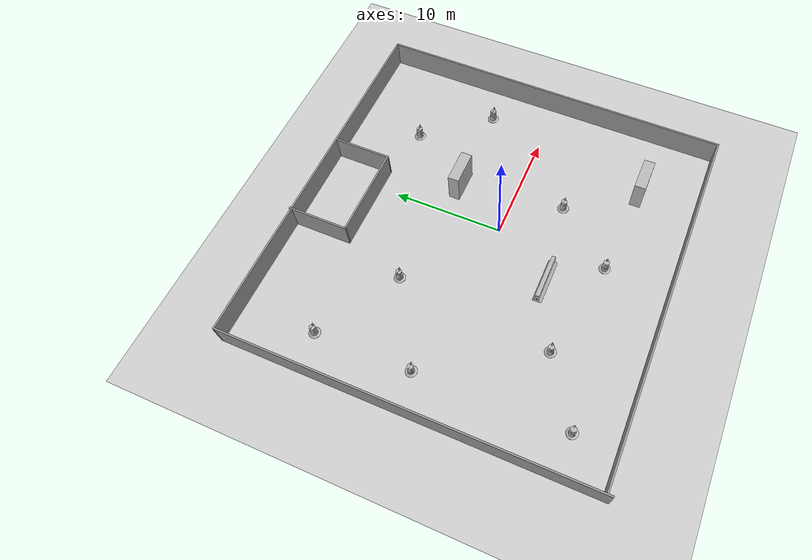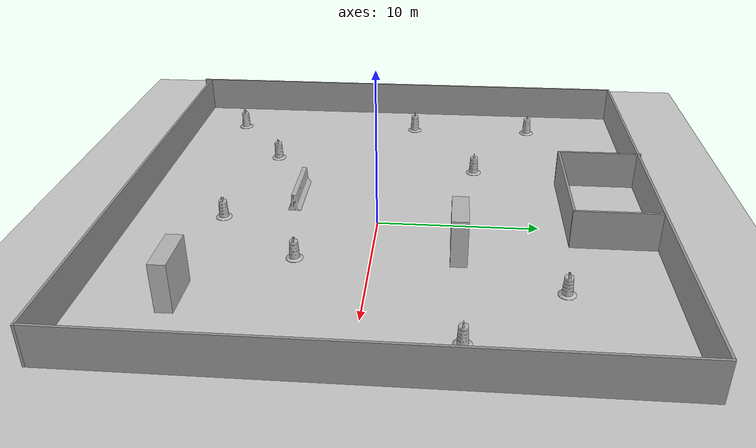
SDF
<sdf version="1.7">
 <world name="default">
  <light name="sun" type="directional">
   <pose>0 0 10 0 -0 0</pose>
   <diffuse>0.8 0.8 0.8 1</diffuse>
   <specular>0.2 0.2 0.2 1</specular>
   <attenuation>
    <range>1000</range>
    <constant>0.9</constant>
    <linear>0.01</linear>
    <quadratic>0.001</quadratic>
   </attenuation>
   <direction>-0.5 0.1 -0.9</direction>
   <spot><inner_angle>0</inner_angle><outer_angle>0</outer_angle><falloff>0</falloff></spot>
  </light>
  <model name="ground_plane">
   <static>1</static>
   <link name="link">
    <collision name="collision">
     <geometry><plane><normal>0 0 1</normal><size>100 100</size></plane></geometry>
     <surface>
      <contact><collide_bitmask>65535</collide_bitmask></contact>
      <friction><ode><mu>100</mu><mu2>50</mu2></ode></friction>
     </surface>
    </collision>
    <visual name="visual">
     <cast_shadows>0</cast_shadows>
     <geometry><plane><normal>0 0 1</normal><size>100 100</size></plane></geometry>
     <material>
      <script><uri>file://media/materials/scripts/gazebo.material</uri><name>Gazebo/Grey</name></script>
     </material>
    </visual>
   </link>
  </model>
  <gravity>0 0 -9.8</gravity>
  <magnetic_field>6e-06 2.3e-05 -4.2e-05</magnetic_field>
  <atmosphere type="adiabatic"/>
  <physics type="ode">
   <max_step_size>0.001</max_step_size>
   <real_time_factor>1</real_time_factor>
   <real_time_update_rate>1000</real_time_update_rate>
  </physics>
  <scene><ambient>0.4 0.4 0.4 1</ambient><background>0.7 0.7 0.7 1</background><shadows>1</shadows></scene>
  <spherical_coordinates>
   <surface_model>EARTH_WGS84</surface_model>
   <latitude_deg>0</latitude_deg>
   <longitude_deg>0</longitude_deg>
   <elevation>0</elevation>
   <heading_deg>0</heading_deg>
  </spherical_coordinates>
  <model name="easy">
   <pose>-1.71238 0.568959 0 0 -0 0</pose>
   <link name="Wall_0">
    <collision name="Wall_0_Collision">
     <geometry><box><size>33 0.15 2.5</size></box></geometry>
     <pose>0 0 1.25 0 -0 0</pose>
    </collision>
    <visual name="Wall_0_Visual">
     <pose>0 0 1.25 0 -0 0</pose>
     <geometry><box><size>33 0.15 2.5</size></box></geometry>
     <material>
      <script><uri>file://media/materials/scripts/gazebo.material</uri><name>Gazebo/Grey</name></script>
      <ambient>1 1 1 1</ambient>
     </material>
     <meta><layer>0</layer></meta>
    </visual>
    <pose>-16.4649 -0.061521 0 0 -0 -1.5708</pose>
   </link>
   <link name="Wall_2">
    <collision name="Wall_2_Collision">
     <geometry><box><size>32.5 0.15 2.5</size></box></geometry>
     <pose>0 0 1.25 0 -0 0</pose>
    </collision>
    <visual name="Wall_2_Visual">
     <pose>0 0 1.25 0 -0 0</pose>
     <geometry><box><size>32.5 0.15 2.5</size></box></geometry>
     <material>
      <script><uri>file://media/materials/scripts/gazebo.material</uri><name>Gazebo/Grey</name></script>
      <ambient>1 1 1 1</ambient>
     </material>
     <meta><layer>0</layer></meta>
    </visual>
    <pose>16.4649 0.167763 0 0 -0 -1.5708</pose>
   </link>
   <link name="Wall_3">
    <collision name="Wall_3_Collision">
     <geometry><box><size>32.9293 0.15 2.5</size></box></geometry>
     <pose>0 0 1.25 0 -0 0</pose>
    </collision>
    <visual name="Wall_3_Visual">
     <pose>0 0 1.25 0 -0 0</pose>
     <geometry><box><size>32.9293 0.15 2.5</size></box></geometry>
     <material>
      <script><uri>file://media/materials/scripts/gazebo.material</uri><name>Gazebo/Grey</name></script>
      <ambient>1 1 1 1</ambient>
     </material>
     <meta><layer>0</layer></meta>
    </visual>
    <pose>0.075243 -16.078 0 0 -0 3.14159</pose>
   </link>
   <link name="Wall_5">
    <collision name="Wall_5_Collision">
     <geometry><box><size>33 0.15 2.5</size></box></geometry>
     <pose>0 0 1.25 0 -0 0</pose>
    </collision>
    <visual name="Wall_5_Visual">
     <pose>0 0 1.25 0 -0 0</pose>
     <geometry><box><size>33 0.15 2.5</size></box></geometry>
     <material>
      <script><uri>file://media/materials/scripts/gazebo.material</uri><name>Gazebo/Grey</name></script>
      <ambient>1 1 1 1</ambient>
     </material>
     <meta><layer>0</layer></meta>
    </visual>
    <pose>-0.0399 16.3635 0 0 -0 0</pose>
   </link>
   <link name="Wall_7">
    <collision name="Wall_7_Collision">
     <geometry><box><size>5.5 0.15 2.5</size></box></geometry>
     <pose>0 0 1.25 0 -0 0</pose>
    </collision>
    <visual name="Wall_7_Visual">
     <pose>0 0 1.25 0 -0 0</pose>
     <geometry><box><size>5.5 0.15 2.5</size></box></geometry>
     <material>
      <script><uri>file://media/materials/scripts/gazebo.material</uri><name>Gazebo/Grey</name></script>
      <ambient>1 1 1 1</ambient>
     </material>
     <meta><layer>0</layer></meta>
    </visual>
    <pose>-4.41568 13.8115 0 0 -0 -1.5708</pose>
   </link>
   <link name="Wall_8">
    <collision name="Wall_8_Collision">
     <geometry><box><size>8.25 0.15 2.5</size></box></geometry>
     <pose>0 0 1.25 0 -0 0</pose>
    </collision>
    <visual name="Wall_8_Visual">
     <pose>0 0 1.25 0 -0 0</pose>
     <geometry><box><size>8.25 0.15 2.5</size></box></geometry>
     <material>
      <script><uri>file://media/materials/scripts/gazebo.material</uri><name>Gazebo/Grey</name></script>
      <ambient>1 1 1 1</ambient>
     </material>
     <meta><layer>0</layer></meta>
    </visual>
    <pose>-0.365684 11.1365 0 0 -0 0</pose>
   </link>
   <link name="Wall_9">
    <collision name="Wall_9_Collision">
     <geometry><box><size>5.25 0.15 2.5</size></box></geometry>
     <pose>0 0 1.25 0 -0 0</pose>
    </collision>
    <visual name="Wall_9_Visual">
     <pose>0 0 1.25 0 -0 0</pose>
     <geometry><box><size>5.25 0.15 2.5</size></box></geometry>
     <material>
      <script><uri>file://media/materials/scripts/gazebo.material</uri><name>Gazebo/Grey</name></script>
      <ambient>1 1 1 1</ambient>
     </material>
     <meta><layer>0</layer></meta>
    </visual>
    <pose>3.68432 13.6865 0 0 -0 1.5708</pose>
   </link>
   <static>1</static>
  </model>
  <model name="Construction Barrel">
   <link name="link">
    <inertial>
     <pose>0 0 0.4 0 -0 0</pose>
     <mass>500</mass>
     <inertia><ixx>51.2096</ixx><iyy>51.2096</iyy><izz>25</izz><ixy>0</ixy><ixz>0</ixz><iyz>0</iyz></inertia>
    </inertial>
    <collision name="collision">
     <geometry><mesh><uri>model://construction_barrel/meshes/construction_barrel.dae</uri></mesh></geometry>
    </collision>
    <visual name="visual">
     <geometry><mesh><uri>model://construction_barrel/meshes/construction_barrel.dae</uri></mesh></geometry>
    </visual>
   </link>
   <pose>-8.90884 -8.0679 1e-06 3e-06 2e-06 -2e-05</pose>
  </model>
  <model name="Construction Barrel_0">
   <link name="link">
    <inertial>
     <pose>0 0 0.4 0 -0 0</pose>
     <mass>500</mass>
     <inertia><ixx>51.2096</ixx><iyy>51.2096</iyy><izz>25</izz><ixy>0</ixy><ixz>0</ixz><iyz>0</iyz></inertia>
    </inertial>
    <collision name="collision">
     <geometry><mesh><uri>model://construction_barrel/meshes/construction_barrel.dae</uri></mesh></geometry>
    </collision>
    <visual name="visual">
     <geometry><mesh><uri>model://construction_barrel/meshes/construction_barrel.dae</uri></mesh></geometry>
    </visual>
   </link>
   <pose>4.40811 -4.4402 -0 0 0 -1.8e-05</pose>
  </model>
  <model name="Construction Barrel_1">
   <link name="link">
    <inertial>
     <pose>0 0 0.4 0 -0 0</pose>
     <mass>500</mass>
     <inertia><ixx>51.2096</ixx><iyy>51.2096</iyy><izz>25</izz><ixy>0</ixy><ixz>0</ixz><iyz>0</iyz></inertia>
    </inertial>
    <collision name="collision">
     <geometry><mesh><uri>model://construction_barrel/meshes/construction_barrel.dae</uri></mesh></geometry>
    </collision>
    <visual name="visual">
     <geometry><mesh><uri>model://construction_barrel/meshes/construction_barrel.dae</uri></mesh></geometry>
    </visual>
   </link>
   <pose>0.007165 -9.78892 -2e-06 8e-06 -4e-06 -1.7e-05</pose>
  </model>
  <model name="Construction Barrel_2">
   <link name="link">
    <inertial>
     <pose>0 0 0.4 0 -0 0</pose>
     <mass>500</mass>
     <inertia><ixx>51.2096</ixx><iyy>51.2096</iyy><izz>25</izz><ixy>0</ixy><ixz>0</ixz><iyz>0</iyz></inertia>
    </inertial>
    <collision name="collision">
     <geometry><mesh><uri>model://construction_barrel/meshes/construction_barrel.dae</uri></mesh></geometry>
    </collision>
    <visual name="visual">
     <geometry><mesh><uri>model://construction_barrel/meshes/construction_barrel.dae</uri></mesh></geometry>
    </visual>
   </link>
   <pose>-7.53254 6.11331 -1e-06 3e-06 7e-06 -1.5e-05</pose>
  </model>
  <model name="Construction Barrel_3">
   <link name="link">
    <inertial>
     <pose>0 0 0.4 0 -0 0</pose>
     <mass>500</mass>
     <inertia><ixx>51.2096</ixx><iyy>51.2096</iyy><izz>25</izz><ixy>0</ixy><ixz>0</ixz><iyz>0</iyz></inertia>
    </inertial>
    <collision name="collision">
     <geometry><mesh><uri>model://construction_barrel/meshes/construction_barrel.dae</uri></mesh></geometry>
    </collision>
    <visual name="visual">
     <geometry><mesh><uri>model://construction_barrel/meshes/construction_barrel.dae</uri></mesh></geometry>
    </visual>
   </link>
   <pose>-14.6898 1.61991 0 0 0 -1.5e-05</pose>
  </model>
  <model name="Construction Barrel_4">
   <link name="link">
    <inertial>
     <pose>0 0 0.4 0 -0 0</pose>
     <mass>500</mass>
     <inertia><ixx>51.2096</ixx><iyy>51.2096</iyy><izz>25</izz><ixy>0</ixy><ixz>0</ixz><iyz>0</iyz></inertia>
    </inertial>
    <collision name="collision">
     <geometry><mesh><uri>model://construction_barrel/meshes/construction_barrel.dae</uri></mesh></geometry>
    </collision>
    <visual name="visual">
     <geometry><mesh><uri>model://construction_barrel/meshes/construction_barrel.dae</uri></mesh></geometry>
    </visual>
   </link>
   <pose>11.5343 5.29497 -0 1e-06 -1e-06 -1.2e-05</pose>
  </model>
  <model name="jersey_barrier">
   <static>1</static>
   <link name="link">
    <visual name="visual">
     <geometry><mesh><uri>model://jersey_barrier/meshes/jersey_barrier.dae</uri></mesh></geometry>
    </visual>
    <collision name="upright">
     <pose>0 0 0.5715 0 -0 0</pose>
     <geometry><box><size>4.06542 0.3063 1.143</size></box></geometry>
    </collision>
    <collision name="base">
     <pose>0 0 0.032258 0 -0 0</pose>
     <geometry><box><size>4.06542 0.8107 0.064516</size></box></geometry>
    </collision>
    <collision name="base2">
     <pose>0 0 0.1 0 -0 0</pose>
     <geometry><box><size>4.06542 0.65 0.1</size></box></geometry>
    </collision>
    <collision name="base3">
     <pose>0 0 0.2 0 -0 0</pose>
     <geometry><box><size>4.06542 0.5 0.1</size></box></geometry>
    </collision>
    <collision name="left-angle">
     <pose>0 -0.224 0.2401 0.9 -0 0</pose>
     <geometry><box><size>4.06542 0.5 0.064516</size></box></geometry>
    </collision>
    <collision name="right-angle">
     <pose>0 0.224 0.2401 -0.9 0 0</pose>
     <geometry><box><size>4.06542 0.5 0.064516</size></box></geometry>
    </collision>
   </link>
   <pose>-3.13769 -5.47166 0 0 -0 0</pose>
  </model>
  <model name="brick_box_3x1x3">
   <static>1</static>
   <link name="chassis">
    <pose>0 0 1.5 0 -0 0</pose>
    <collision name="collision"><geometry><box><size>3 1 3</size></box></geometry></collision>
    <visual name="visual">
     <geometry><mesh><uri>model://brick_box_3x1x3/meshes/simple_box.dae</uri><scale>3 1 3</scale></mesh></geometry>
     <material>
      <script>
       <uri>model://brick_box_3x1x3/materials/scripts</uri>
       <uri>model://brick_box_3x1x3/materials/textures</uri>
       <name>BrickBox/Diffuse</name>
      </script>
     </material>
    </visual>
   </link>
   <pose>8.67083 -10.2851 0 0 -0 0</pose>
  </model>
  <model name="brick_box_3x1x3_0">
   <static>1</static>
   <link name="chassis">
    <pose>0 0 1.5 0 -0 0</pose>
    <collision name="collision"><geometry><box><size>3 1 3</size></box></geometry></collision>
    <visual name="visual">
     <geometry><mesh><uri>model://brick_box_3x1x3/meshes/simple_box.dae</uri><scale>3 1 3</scale></mesh></geometry>
     <material>
      <script>
       <uri>model://brick_box_3x1x3/materials/scripts</uri>
       <uri>model://brick_box_3x1x3/materials/textures</uri>
       <name>BrickBox/Diffuse</name>
      </script>
     </material>
    </visual>
   </link>
   <pose>3.17848 5.08914 0 0 -0 0</pose>
  </model>
  <model name="Construction Barrel_5">
   <link name="link">
    <inertial>
     <pose>0 0 0.4 0 -0 0</pose>
     <mass>500</mass>
     <inertia><ixx>51.2096</ixx><iyy>51.2096</iyy><izz>25</izz><ixy>0</ixy><ixz>0</ixz><iyz>0</iyz></inertia>
    </inertial>
    <collision name="collision">
     <geometry><mesh><uri>model://construction_barrel/meshes/construction_barrel.dae</uri></mesh></geometry>
    </collision>
    <visual name="visual">
     <geometry><mesh><uri>model://construction_barrel/meshes/construction_barrel.dae</uri></mesh></geometry>
    </visual>
   </link>
   <pose>6.89131 10.9607 1e-06 2e-06 3e-06 -6e-06</pose>
  </model>
  <model name="Construction Barrel_6">
   <link name="link">
    <inertial>
     <pose>0 0 0.4 0 -0 0</pose>
     <mass>500</mass>
     <inertia><ixx>51.2096</ixx><iyy>51.2096</iyy><izz>25</izz><ixy>0</ixy><ixz>0</ixz><iyz>0</iyz></inertia>
    </inertial>
    <collision name="collision">
     <geometry><mesh><uri>model://construction_barrel/meshes/construction_barrel.dae</uri></mesh></geometry>
    </collision>
    <visual name="visual">
     <geometry><mesh><uri>model://construction_barrel/meshes/construction_barrel.dae</uri></mesh></geometry>
    </visual>
   </link>
   <pose>-14.7582 10.3452 0 0 0 -3e-06</pose>
  </model>
  <model name="Construction Barrel_7">
   <link name="link">
    <inertial>
     <pose>0 0 0.4 0 -0 0</pose>
     <mass>500</mass>
     <inertia><ixx>51.2096</ixx><iyy>51.2096</iyy><izz>25</izz><ixy>0</ixy><ixz>0</ixz><iyz>0</iyz></inertia>
    </inertial>
    <collision name="collision">
     <geometry><mesh><uri>model://construction_barrel/meshes/construction_barrel.dae</uri></mesh></geometry>
    </collision>
    <visual name="visual">
     <geometry><mesh><uri>model://construction_barrel/meshes/construction_barrel.dae</uri></mesh></geometry>
    </visual>
   </link>
   <pose>-14.4154 -11.8409 -1e-06 3e-06 -2e-06 -2e-06</pose>
  </model>
 </world>
</sdf>
